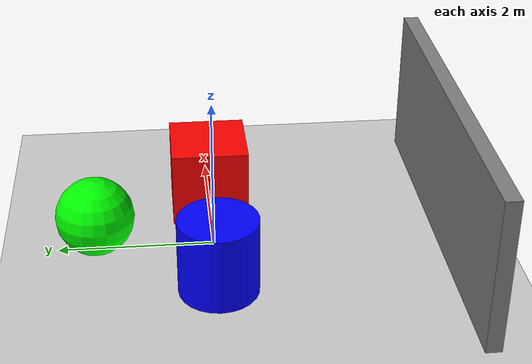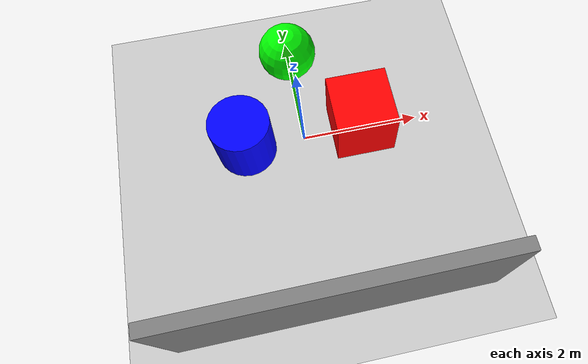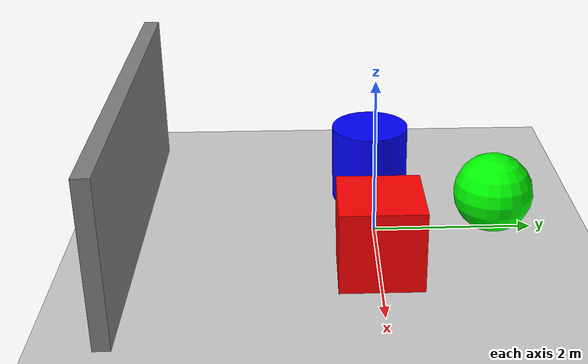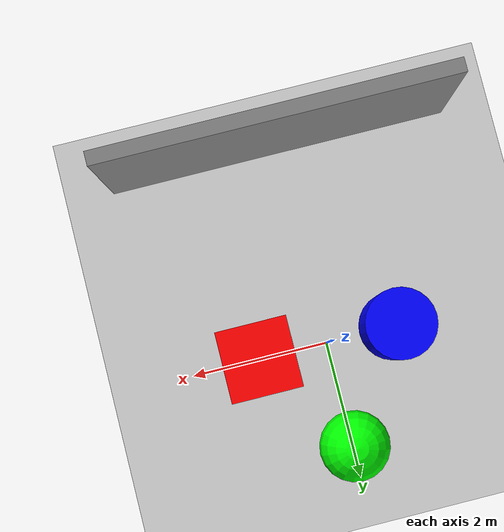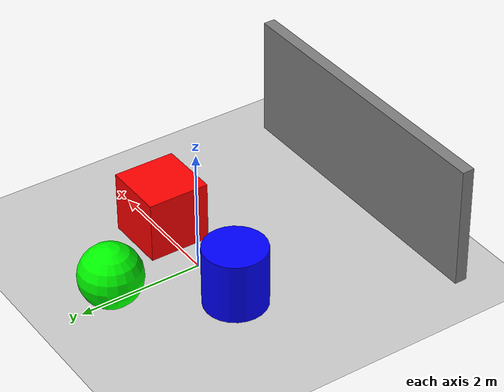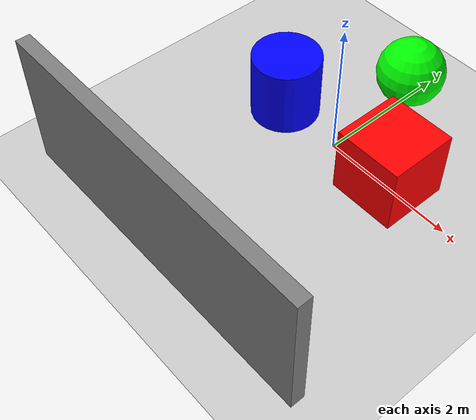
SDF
<?xml version="1.0" ?>
<sdf version="1.6">
  <world name="world_percobaan2">

    <include>
      <uri>model://sun</uri>
    </include>
    <include>
      <uri>model://ground_plane</uri>
    </include>

    <physics type="ode">
      <real_time_update_rate>1000.0</real_time_update_rate>
      <max_step_size>0.001</max_step_size>
    </physics>

    <!-- Kubus (Box) merah -->
    <model name="kotak_merah">
      <pose>1 0 0.5 0 0 0</pose>
      <static>false</static>
      <link name="link">
        <inertial>
          <mass>1.0</mass>
          <inertia>
            <ixx>0.0833</ixx><ixy>0</ixy><ixz>0</ixz>
            <iyy>0.0833</iyy><iyz>0</iyz>
            <izz>0.0833</izz>
          </inertia>
        </inertial>
        <collision name="collision">
          <geometry><box><size>1 1 1</size></box></geometry>
        </collision>
        <visual name="visual">
          <geometry><box><size>1 1 1</size></box></geometry>
          <material>
            <ambient>1 0 0 1</ambient>
            <diffuse>1 0 0 1</diffuse>
          </material>
        </visual>
      </link>
    </model>

    <!-- Silinder (Cylinder) biru -->
    <model name="silinder_biru">
      <pose>-1 0 0.5 0 0 0</pose>
      <static>false</static>
      <link name="link">
        <inertial>
          <mass>1.0</mass>
          <inertia>
            <ixx>0.0833</ixx><ixy>0</ixy><ixz>0</ixz>
            <iyy>0.0833</iyy><iyz>0</iyz>
            <izz>0.0625</izz>
          </inertia>
        </inertial>
        <collision name="collision">
          <geometry><cylinder><radius>0.5</radius><length>1</length></cylinder></geometry>
        </collision>
        <visual name="visual">
          <geometry><cylinder><radius>0.5</radius><length>1</length></cylinder></geometry>
          <material>
            <ambient>0 0 1 1</ambient>
            <diffuse>0 0 1 1</diffuse>
          </material>
        </visual>
      </link>
    </model>

    <!-- Bola (Sphere) hijau -->
    <model name="bola_hijau">
      <pose>0 1.5 0.5 0 0 0</pose>
      <static>false</static>
      <link name="link">
        <inertial>
          <mass>0.5</mass>
          <inertia>
            <ixx>0.04</ixx><ixy>0</ixy><ixz>0</ixz>
            <iyy>0.04</iyy><iyz>0</iyz>
            <izz>0.04</izz>
          </inertia>
        </inertial>
        <collision name="collision">
          <geometry><sphere><radius>0.5</radius></sphere></geometry>
        </collision>
        <visual name="visual">
          <geometry><sphere><radius>0.5</radius></sphere></geometry>
          <material>
            <ambient>0 1 0 1</ambient>
            <diffuse>0 1 0 1</diffuse>
          </material>
        </visual>
      </link>
    </model>

    <!-- Dinding statis -->
    <model name="dinding">
      <pose>0 -3 1 0 0 0</pose>
      <static>true</static>
      <link name="link">
        <collision name="collision">
          <geometry><box><size>5 0.2 2</size></box></geometry>
        </collision>
        <visual name="visual">
          <geometry><box><size>5 0.2 2</size></box></geometry>
          <material>
            <ambient>0.5 0.5 0.5 1</ambient>
            <diffuse>0.5 0.5 0.5 1</diffuse>
          </material>
        </visual>
      </link>
    </model>

    <gui fullscreen="0">
      <camera name="user_camera">
        <pose>6 -6 3 0 0.4 2.4</pose>
        <view_controller>orbit</view_controller>
      </camera>
    </gui>

  </world>
</sdf>
